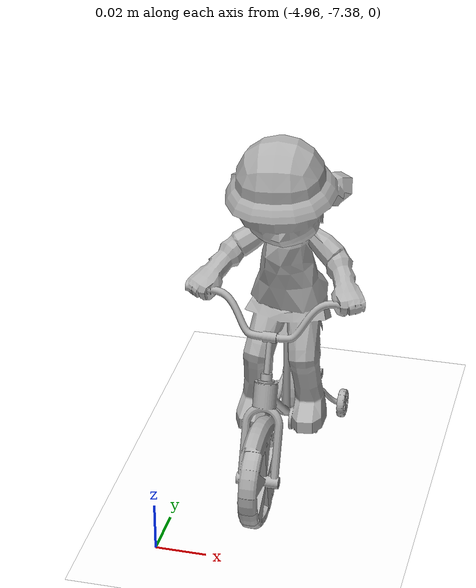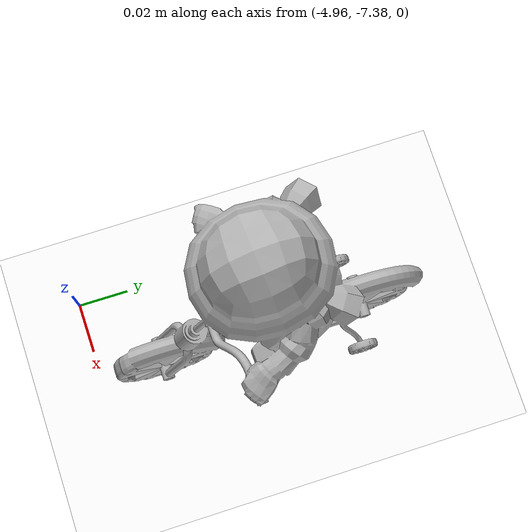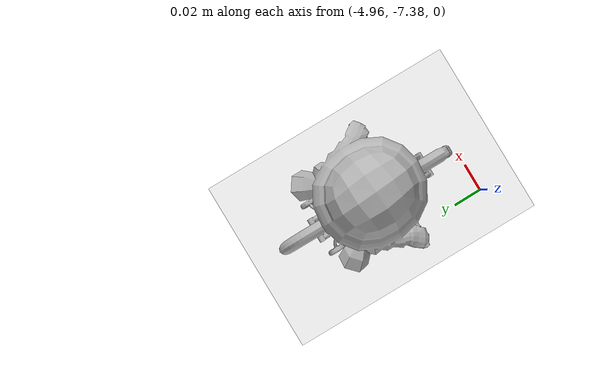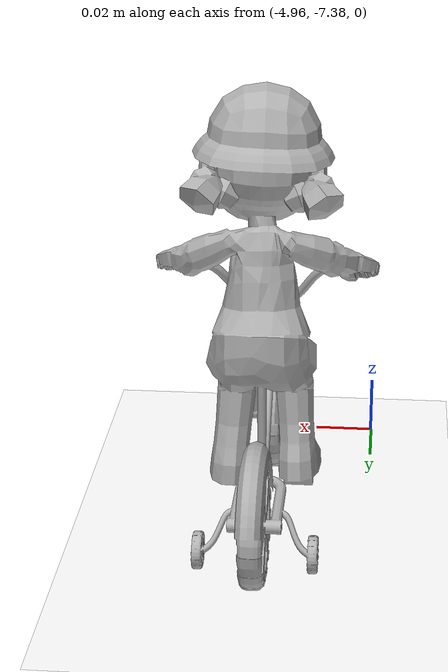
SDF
<sdf version="1.7">
 <world name="default">
  <model name="track">
   <static>1</static>
   <link name="link">
    <collision name="collision">
     <geometry><plane><normal>0 0 1</normal><size>14.68 14.99</size></plane></geometry>
     <surface>
      <contact><collide_bitmask>65535</collide_bitmask></contact>
      <friction><ode><mu>1</mu><mu2>1</mu2></ode></friction>
     </surface>
    </collision>
    <visual name="visual">
     <geometry><plane><normal>0 0 1</normal><size>14.68 14.99</size></plane></geometry>
     <material>
      <ambient>1 1 1 1</ambient>
      <diffuse>1 1 1 1</diffuse>
      <specular>0 0 0 0</specular>
      <emissive>1 1 1 1</emissive>
      <script>
       <uri>model://track/materials/scripts</uri>
       <uri>model://track/materials/textures</uri>
       <name>BFMC_MATERIAL</name>
      </script>
     </material>
    </visual>
   </link>
   <pose>0.761604 -1.59858 0 0 -0 0</pose>
  </model>
  <model name="pedestrian_object">
   <link name="link_0">
    <inertial>
     <mass>1</mass>
     <inertia>
      <ixx>0.166667</ixx>
      <ixy>0</ixy>
      <ixz>0</ixz>
      <iyy>0.166667</iyy>
      <iyz>0</iyz>
      <izz>0.166667</izz>
     </inertia>
    </inertial>
    <visual name="visual">
     <geometry>
      <mesh><uri>model://pedestrian_object/meshes/pedestrian_object.dae</uri><scale>1 1 1</scale></mesh>
     </geometry>
     <material>
      <lighting>1</lighting>
      <script>
       <uri>model://pedestrian_object/materials/scripts</uri>
       <uri>model://pedestrian_object/materials/textures</uri>
       <name>PEDESTRIAN_OBJECT</name>
      </script>
      <shader type="vertex"><normal_map>__default__</normal_map></shader>
      <ambient>0.3 0.3 0.3 1</ambient>
      <diffuse>0.7 0.7 0.7 1</diffuse>
      <specular>0.01 0.01 0.01 1</specular>
      <emissive>0 0 0 1</emissive>
     </material>
    </visual>
    <collision name="collision">
     <geometry>
      <mesh><uri>model://pedestrian_object/meshes/pedestrian_object.dae</uri><scale>1 1 1</scale></mesh>
     </geometry>
     <surface>
      <friction>
       <ode><mu>0.1</mu><mu2>0.1</mu2><fdir1>0 0 0</fdir1><slip1>0</slip1><slip2>0</slip2></ode>
       <torsional>
        <coefficient>1</coefficient>
        <patch_radius>0</patch_radius>
        <surface_radius>0</surface_radius>
        <use_patch_radius>1</use_patch_radius>
        <ode><slip>0</slip></ode>
       </torsional>
      </friction>
      <bounce><restitution_coefficient>0</restitution_coefficient><threshold>1e+06</threshold></bounce>
      <contact>
       <collide_without_contact>0</collide_without_contact>
       <collide_without_contact_bitmask>1</collide_without_contact_bitmask>
       <collide_bitmask>1</collide_bitmask>
       <ode>
        <soft_cfm>0</soft_cfm>
        <soft_erp>0.2</soft_erp>
        <kp>1e+13</kp>
        <kd>1</kd>
        <max_vel>0.01</max_vel>
        <min_depth>0</min_depth>
       </ode>
       <bullet>
        <split_impulse>1</split_impulse>
        <split_impulse_penetration_threshold>-0.01</split_impulse_penetration_threshold>
        <soft_cfm>0</soft_cfm>
        <soft_erp>0.2</soft_erp>
        <kp>1e+13</kp>
        <kd>1</kd>
       </bullet>
      </contact>
     </surface>
    </collision>
   </link>
   <static>0</static>
   <pose>-4.92588 -7.3113 0.000295 0.004578 -4.7e-05 -1e-06</pose>
  </model>
 </world>
</sdf>
